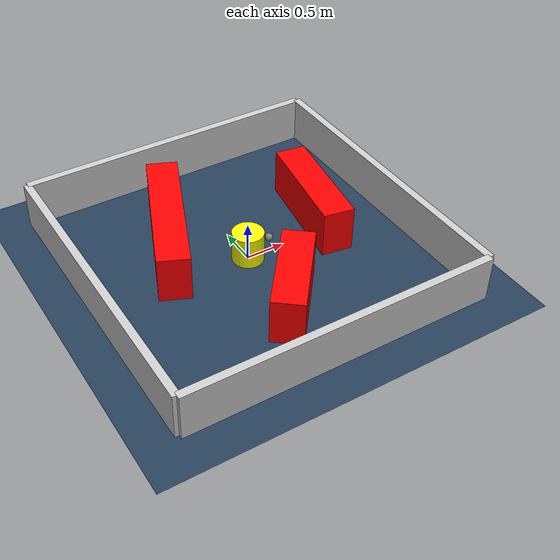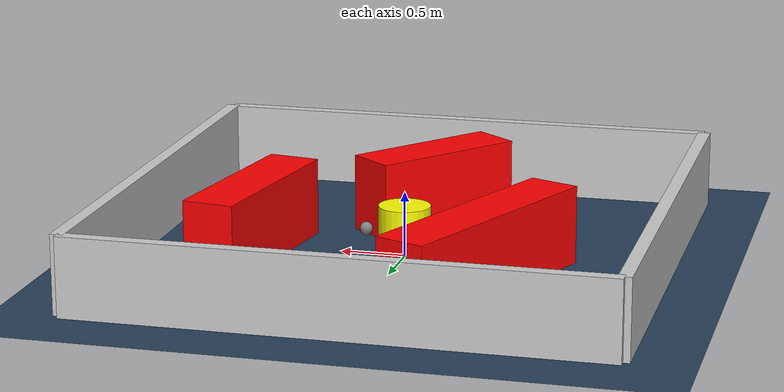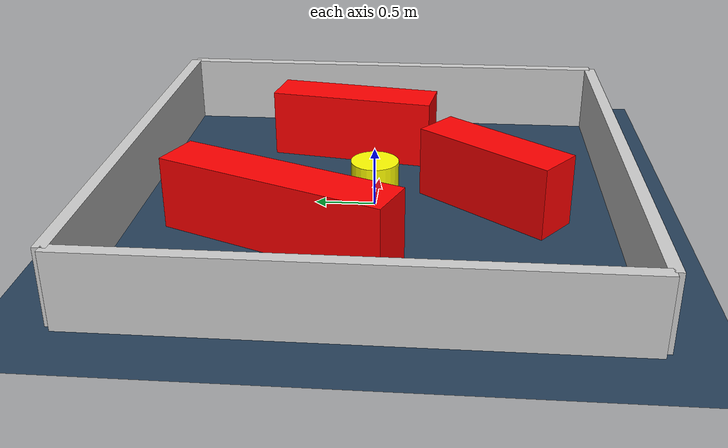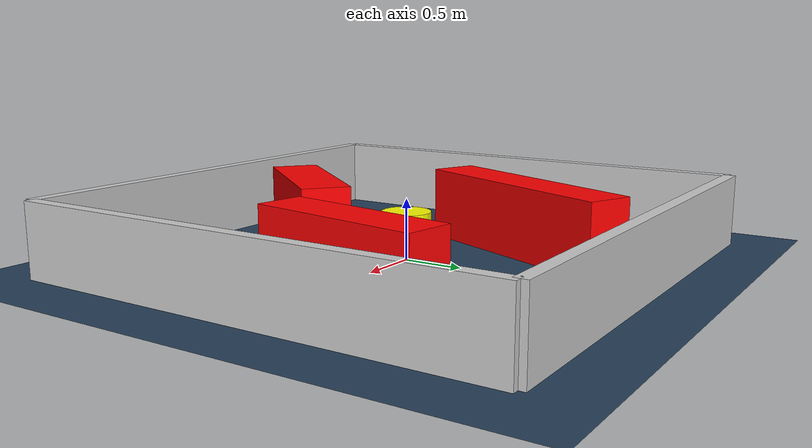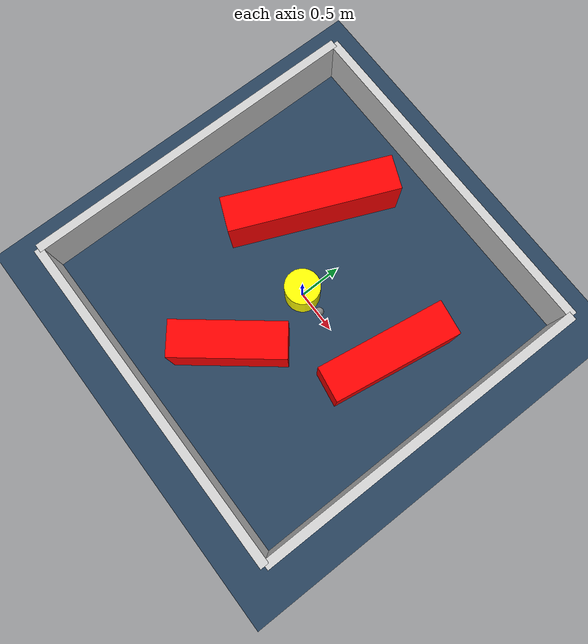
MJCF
<?xml version="1.0" ?>
<mujoco model="generated_environment">
  <option timestep="0.01" integrator="RK4" cone="elliptic"/>
  <default>
    <geom density="1"/>
  </default>
  <asset>
    <texture builtin="gradient" height="3072" rgb1="0.3 0.5 0.7" rgb2="0 0 0" type="skybox" width="512"/>
    <texture builtin="checker" height="300" mark="edge" markrgb="0.8 0.8 0.8" name="groundplane" rgb1="0.2 0.3 0.4" rgb2="0.1 0.2 0.3" type="2d" width="300"/>
    <material name="groundplane" reflectance="0.2" texrepeat="5 5" texture="groundplane" texuniform="true"/>
    <material name="robot" rgba="0.0 1.0 0.0 1"/>
  </asset>
  <worldbody>
    <light dir="0 0 -1" directional="true" pos="0 0 1.5"/>
    <geom condim="4" friction="1.0 0.005 0.001" material="groundplane" name="floor" size="0 0 0.05" type="plane"/>
    <body name="walls">
      <geom name="wall_1" condim="4" pos="-2.0 0.0 0.3" rgba="0.800000011920929 0.800000011920929 0.800000011920929 1.0" size="0.05 2.0 0.3" type="box"/>
      <geom name="wall_2" condim="4" pos="2.0 0.0 0.3" rgba="0.800000011920929 0.800000011920929 0.800000011920929 1.0" size="0.05 2.0 0.3" type="box"/>
      <geom name="wall_3" condim="4" pos="0.0 -2.0 0.3" rgba="0.800000011920929 0.800000011920929 0.800000011920929 1.0" size="2.0 0.05 0.3" type="box"/>
      <geom name="wall_4" condim="4" pos="0.0 2.0 0.3" rgba="0.800000011920929 0.800000011920929 0.800000011920929 1.0" size="2.0 0.05 0.3" type="box"/>
    </body>
    <body name="robot">
      <joint name="joint_x" type="slide" pos="0 0 0" axis="1 0 0"/>
      <joint name="joint_y" type="slide" pos="0 0 0" axis="0 1 0"/>
      <geom name="robot" type="sphere" pos="0.3 0.0 0.2" size="0.05" mass="5." friction="1.0 0.005 0.0001" condim="4" rgba="0.5 0.5 0.5 1.0"/>
      <site name="sensor_ball"/>
    </body>
    <body name="obstacle_movable_1">
      <geom name="obstacle_movable_1" condim="4" pos="0.0 0.0 0.2" euler="0 0 0.0" friction="1.0 0.005 0.001" rgba="1.0 1.0 0.0 1.0" size="0.2 0.2 0.0" type="cylinder" mass="0.1"/>
      <joint type="free"/>
    </body>
    <body name="obstacle_2_static">
      <geom name="obstacle_2_static" condim="4" pos="0.006069785368759462 -0.9856380616616558 0.3" euler="0 0 231.29988468314284" friction="1.0 0.005 0.001" rgba="1 0 0 1" size="0.6292608831424648 0.2 0.3" type="box"/>
    </body>
    <body name="obstacle_3_static">
      <geom name="obstacle_3_static" condim="4" pos="1.1194927754746598 0.2659481385029794 0.3" euler="0 0 80.95386835419535" friction="1.0 0.005 0.001" rgba="1 0 0 1" size="0.7337221156159592 0.2 0.3" type="box"/>
    </body>
    <body name="obstacle_4_static">
      <geom name="obstacle_4_static" condim="4" pos="-0.7297720637756463 0.6786020436889688 0.3" euler="0 0 67.10897759820202" friction="1.0 0.005 0.001" rgba="1 0 0 1" size="0.970748715385753 0.2 0.3" type="box"/>
    </body>
  </worldbody>
  <actuator>
    <motor name="actuator_x" joint="joint_x" gear="1" ctrlrange="-1 1"/>
    <motor name="actuator_y" joint="joint_y" gear="1" ctrlrange="-1 1"/>
  </actuator>
</mujoco>
